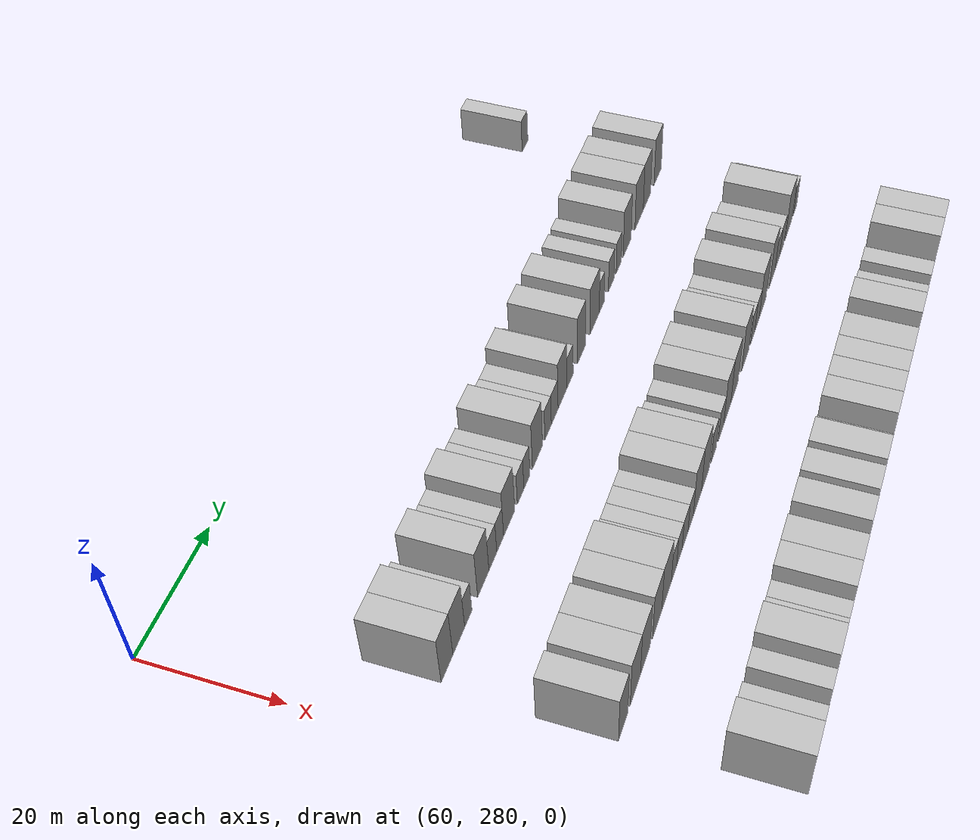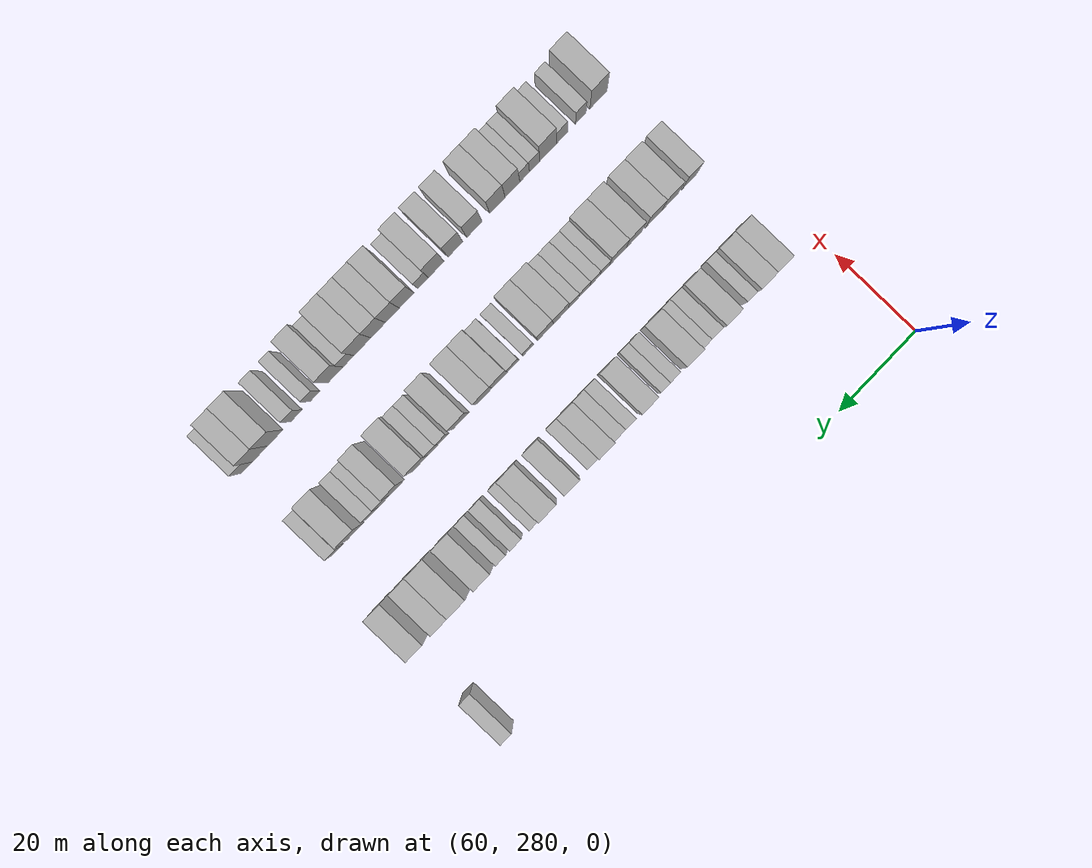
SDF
<sdf version="1.6">
 <world name="default">
  <model name="building_565">
   <static>1</static>
   <pose>69.0000 381.9656 0 0.000000 0.000000 0.000000</pose>
   <link name="link">
    <pose>0 0 3.00 0 0 0</pose>
    <collision name="collision"><geometry><box><size>10.0000 2.7917 6.0000</size></box></geometry></collision>
    <visual name="visual">
     <cast_shadows>0</cast_shadows>
     <geometry><box><size>10.0000 2.7917 6.0000</size></box></geometry>
     <material>
      <script>
       <uri>model://HANNAS_wall/materials/scripts</uri>
       <uri>model://HANNAS_wall/materials/textures</uri>
       <name>vrc/HANNAS_wall</name>
      </script>
     </material>
    </visual>
   </link>
  </model>
  <model name="building_725">
   <static>1</static>
   <pose>91.0000 290.0084 0 0.000000 0.000000 0.000000</pose>
   <link name="link">
    <pose>0 0 4.50 0 0 0</pose>
    <collision name="collision"><geometry><box><size>10.0000 3.8915 9.0000</size></box></geometry></collision>
    <visual name="visual">
     <cast_shadows>0</cast_shadows>
     <geometry><box><size>10.0000 3.8915 9.0000</size></box></geometry>
     <material>
      <script>
       <uri>model://HANNAS_wall/materials/scripts</uri>
       <uri>model://HANNAS_wall/materials/textures</uri>
       <name>vrc/HANNAS_wall</name>
      </script>
     </material>
    </visual>
   </link>
  </model>
  <model name="building_726">
   <static>1</static>
   <pose>91.0000 293.9556 0 0.000000 0.000000 0.000000</pose>
   <link name="link">
    <pose>0 0 4.50 0 0 0</pose>
    <collision name="collision"><geometry><box><size>10.0000 4.0030 9.0000</size></box></geometry></collision>
    <visual name="visual">
     <cast_shadows>0</cast_shadows>
     <geometry><box><size>10.0000 4.0030 9.0000</size></box></geometry>
     <material>
      <script>
       <uri>model://HANNAS_wall/materials/scripts</uri>
       <uri>model://HANNAS_wall/materials/textures</uri>
       <name>vrc/HANNAS_wall</name>
      </script>
     </material>
    </visual>
   </link>
  </model>
  <model name="building_727">
   <static>1</static>
   <pose>91.0000 297.2143 0 0.000000 0.000000 0.000000</pose>
   <link name="link">
    <pose>0 0 3.00 0 0 0</pose>
    <collision name="collision"><geometry><box><size>10.0000 2.5143 6.0000</size></box></geometry></collision>
    <visual name="visual">
     <cast_shadows>0</cast_shadows>
     <geometry><box><size>10.0000 2.5143 6.0000</size></box></geometry>
     <material>
      <script>
       <uri>model://HANNAS_wall/materials/scripts</uri>
       <uri>model://HANNAS_wall/materials/textures</uri>
       <name>vrc/HANNAS_wall</name>
      </script>
     </material>
    </visual>
   </link>
  </model>
  <model name="building_728">
   <static>1</static>
   <pose>91.0000 302.4918 0 0.000000 0.000000 0.000000</pose>
   <link name="link">
    <pose>0 0 4.50 0 0 0</pose>
    <collision name="collision"><geometry><box><size>10.0000 4.0407 9.0000</size></box></geometry></collision>
    <visual name="visual">
     <cast_shadows>0</cast_shadows>
     <geometry><box><size>10.0000 4.0407 9.0000</size></box></geometry>
     <material>
      <script>
       <uri>model://HANNAS_wall/materials/scripts</uri>
       <uri>model://HANNAS_wall/materials/textures</uri>
       <name>vrc/HANNAS_wall</name>
      </script>
     </material>
    </visual>
   </link>
  </model>
  <model name="building_729">
   <static>1</static>
   <pose>91.0000 305.9551 0 0.000000 0.000000 0.000000</pose>
   <link name="link">
    <pose>0 0 3.00 0 0 0</pose>
    <collision name="collision"><geometry><box><size>10.0000 2.8859 6.0000</size></box></geometry></collision>
    <visual name="visual">
     <cast_shadows>0</cast_shadows>
     <geometry><box><size>10.0000 2.8859 6.0000</size></box></geometry>
     <material>
      <script>
       <uri>model://HANNAS_wall/materials/scripts</uri>
       <uri>model://HANNAS_wall/materials/textures</uri>
       <name>vrc/HANNAS_wall</name>
      </script>
     </material>
    </visual>
   </link>
  </model>
  <model name="building_730">
   <static>1</static>
   <pose>91.0000 308.6766 0 0.000000 0.000000 0.000000</pose>
   <link name="link">
    <pose>0 0 3.00 0 0 0</pose>
    <collision name="collision"><geometry><box><size>10.0000 2.5571 6.0000</size></box></geometry></collision>
    <visual name="visual">
     <cast_shadows>0</cast_shadows>
     <geometry><box><size>10.0000 2.5571 6.0000</size></box></geometry>
     <material>
      <script>
       <uri>model://HANNAS_wall/materials/scripts</uri>
       <uri>model://HANNAS_wall/materials/textures</uri>
       <name>vrc/HANNAS_wall</name>
      </script>
     </material>
    </visual>
   </link>
  </model>
  <model name="building_731">
   <static>1</static>
   <pose>91.0000 312.0746 0 0.000000 0.000000 0.000000</pose>
   <link name="link">
    <pose>0 0 4.50 0 0 0</pose>
    <collision name="collision"><geometry><box><size>10.0000 4.2388 9.0000</size></box></geometry></collision>
    <visual name="visual">
     <cast_shadows>0</cast_shadows>
     <geometry><box><size>10.0000 4.2388 9.0000</size></box></geometry>
     <material>
      <script>
       <uri>model://HANNAS_wall/materials/scripts</uri>
       <uri>model://HANNAS_wall/materials/textures</uri>
       <name>vrc/HANNAS_wall</name>
      </script>
     </material>
    </visual>
   </link>
  </model>
  <model name="building_732">
   <static>1</static>
   <pose>91.0000 316.4802 0 0.000000 0.000000 0.000000</pose>
   <link name="link">
    <pose>0 0 3.00 0 0 0</pose>
    <collision name="collision"><geometry><box><size>10.0000 2.5724 6.0000</size></box></geometry></collision>
    <visual name="visual">
     <cast_shadows>0</cast_shadows>
     <geometry><box><size>10.0000 2.5724 6.0000</size></box></geometry>
     <material>
      <script>
       <uri>model://HANNAS_wall/materials/scripts</uri>
       <uri>model://HANNAS_wall/materials/textures</uri>
       <name>vrc/HANNAS_wall</name>
      </script>
     </material>
    </visual>
   </link>
  </model>
  <model name="building_733">
   <static>1</static>
   <pose>91.0000 318.9665 0 0.000000 0.000000 0.000000</pose>
   <link name="link">
    <pose>0 0 3.00 0 0 0</pose>
    <collision name="collision"><geometry><box><size>10.0000 2.4002 6.0000</size></box></geometry></collision>
    <visual name="visual">
     <cast_shadows>0</cast_shadows>
     <geometry><box><size>10.0000 2.4002 6.0000</size></box></geometry>
     <material>
      <script>
       <uri>model://HANNAS_wall/materials/scripts</uri>
       <uri>model://HANNAS_wall/materials/textures</uri>
       <name>vrc/HANNAS_wall</name>
      </script>
     </material>
    </visual>
   </link>
  </model>
  <model name="building_734">
   <static>1</static>
   <pose>91.0000 323.2283 0 0.000000 0.000000 0.000000</pose>
   <link name="link">
    <pose>0 0 4.50 0 0 0</pose>
    <collision name="collision"><geometry><box><size>10.0000 4.1235 9.0000</size></box></geometry></collision>
    <visual name="visual">
     <cast_shadows>0</cast_shadows>
     <geometry><box><size>10.0000 4.1235 9.0000</size></box></geometry>
     <material>
      <script>
       <uri>model://HANNAS_wall/materials/scripts</uri>
       <uri>model://HANNAS_wall/materials/textures</uri>
       <name>vrc/HANNAS_wall</name>
      </script>
     </material>
    </visual>
   </link>
  </model>
  <model name="building_735">
   <static>1</static>
   <pose>91.0000 327.6385 0 0.000000 0.000000 0.000000</pose>
   <link name="link">
    <pose>0 0 3.00 0 0 0</pose>
    <collision name="collision"><geometry><box><size>10.0000 2.6969 6.0000</size></box></geometry></collision>
    <visual name="visual">
     <cast_shadows>0</cast_shadows>
     <geometry><box><size>10.0000 2.6969 6.0000</size></box></geometry>
     <material>
      <script>
       <uri>model://HANNAS_wall/materials/scripts</uri>
       <uri>model://HANNAS_wall/materials/textures</uri>
       <name>vrc/HANNAS_wall</name>
      </script>
     </material>
    </visual>
   </link>
  </model>
  <model name="building_736">
   <static>1</static>
   <pose>91.0000 330.4359 0 0.000000 0.000000 0.000000</pose>
   <link name="link">
    <pose>0 0 3.00 0 0 0</pose>
    <collision name="collision"><geometry><box><size>10.0000 2.8979 6.0000</size></box></geometry></collision>
    <visual name="visual">
     <cast_shadows>0</cast_shadows>
     <geometry><box><size>10.0000 2.8979 6.0000</size></box></geometry>
     <material>
      <script>
       <uri>model://HANNAS_wall/materials/scripts</uri>
       <uri>model://HANNAS_wall/materials/textures</uri>
       <name>vrc/HANNAS_wall</name>
      </script>
     </material>
    </visual>
   </link>
  </model>
  <model name="building_737">
   <static>1</static>
   <pose>91.0000 333.8429 0 0.000000 0.000000 0.000000</pose>
   <link name="link">
    <pose>0 0 4.50 0 0 0</pose>
    <collision name="collision"><geometry><box><size>10.0000 3.9160 9.0000</size></box></geometry></collision>
    <visual name="visual">
     <cast_shadows>0</cast_shadows>
     <geometry><box><size>10.0000 3.9160 9.0000</size></box></geometry>
     <material>
      <script>
       <uri>model://HANNAS_wall/materials/scripts</uri>
       <uri>model://HANNAS_wall/materials/textures</uri>
       <name>vrc/HANNAS_wall</name>
      </script>
     </material>
    </visual>
   </link>
  </model>
  <model name="building_738">
   <static>1</static>
   <pose>91.0000 337.1726 0 0.000000 0.000000 0.000000</pose>
   <link name="link">
    <pose>0 0 3.00 0 0 0</pose>
    <collision name="collision"><geometry><box><size>10.0000 2.7434 6.0000</size></box></geometry></collision>
    <visual name="visual">
     <cast_shadows>0</cast_shadows>
     <geometry><box><size>10.0000 2.7434 6.0000</size></box></geometry>
     <material>
      <script>
       <uri>model://HANNAS_wall/materials/scripts</uri>
       <uri>model://HANNAS_wall/materials/textures</uri>
       <name>vrc/HANNAS_wall</name>
      </script>
     </material>
    </visual>
   </link>
  </model>
  <model name="building_739">
   <static>1</static>
   <pose>91.0000 342.4407 0 0.000000 0.000000 0.000000</pose>
   <link name="link">
    <pose>0 0 4.50 0 0 0</pose>
    <collision name="collision"><geometry><box><size>10.0000 3.7928 9.0000</size></box></geometry></collision>
    <visual name="visual">
     <cast_shadows>0</cast_shadows>
     <geometry><box><size>10.0000 3.7928 9.0000</size></box></geometry>
     <material>
      <script>
       <uri>model://HANNAS_wall/materials/scripts</uri>
       <uri>model://HANNAS_wall/materials/textures</uri>
       <name>vrc/HANNAS_wall</name>
      </script>
     </material>
    </visual>
   </link>
  </model>
  <model name="building_740">
   <static>1</static>
   <pose>91.0000 348.5293 0 0.000000 0.000000 0.000000</pose>
   <link name="link">
    <pose>0 0 4.50 0 0 0</pose>
    <collision name="collision"><geometry><box><size>10.0000 4.3844 9.0000</size></box></geometry></collision>
    <visual name="visual">
     <cast_shadows>0</cast_shadows>
     <geometry><box><size>10.0000 4.3844 9.0000</size></box></geometry>
     <material>
      <script>
       <uri>model://HANNAS_wall/materials/scripts</uri>
       <uri>model://HANNAS_wall/materials/textures</uri>
       <name>vrc/HANNAS_wall</name>
      </script>
     </material>
    </visual>
   </link>
  </model>
  <model name="building_741">
   <static>1</static>
   <pose>91.0000 351.9346 0 0.000000 0.000000 0.000000</pose>
   <link name="link">
    <pose>0 0 3.00 0 0 0</pose>
    <collision name="collision"><geometry><box><size>10.0000 2.4262 6.0000</size></box></geometry></collision>
    <visual name="visual">
     <cast_shadows>0</cast_shadows>
     <geometry><box><size>10.0000 2.4262 6.0000</size></box></geometry>
     <material>
      <script>
       <uri>model://HANNAS_wall/materials/scripts</uri>
       <uri>model://HANNAS_wall/materials/textures</uri>
       <name>vrc/HANNAS_wall</name>
      </script>
     </material>
    </visual>
   </link>
  </model>
  <model name="building_742">
   <static>1</static>
   <pose>91.0000 356.5745 0 0.000000 0.000000 0.000000</pose>
   <link name="link">
    <pose>0 0 3.00 0 0 0</pose>
    <collision name="collision"><geometry><box><size>10.0000 2.8535 6.0000</size></box></geometry></collision>
    <visual name="visual">
     <cast_shadows>0</cast_shadows>
     <geometry><box><size>10.0000 2.8535 6.0000</size></box></geometry>
     <material>
      <script>
       <uri>model://HANNAS_wall/materials/scripts</uri>
       <uri>model://HANNAS_wall/materials/textures</uri>
       <name>vrc/HANNAS_wall</name>
      </script>
     </material>
    </visual>
   </link>
  </model>
  <model name="building_743">
   <static>1</static>
   <pose>91.0000 360.3081 0 0.000000 0.000000 0.000000</pose>
   <link name="link">
    <pose>0 0 3.00 0 0 0</pose>
    <collision name="collision"><geometry><box><size>10.0000 2.6138 6.0000</size></box></geometry></collision>
    <visual name="visual">
     <cast_shadows>0</cast_shadows>
     <geometry><box><size>10.0000 2.6138 6.0000</size></box></geometry>
     <material>
      <script>
       <uri>model://HANNAS_wall/materials/scripts</uri>
       <uri>model://HANNAS_wall/materials/textures</uri>
       <name>vrc/HANNAS_wall</name>
      </script>
     </material>
    </visual>
   </link>
  </model>
  <model name="building_744">
   <static>1</static>
   <pose>91.0000 364.6768 0 0.000000 0.000000 0.000000</pose>
   <link name="link">
    <pose>0 0 4.50 0 0 0</pose>
    <collision name="collision"><geometry><box><size>10.0000 4.1237 9.0000</size></box></geometry></collision>
    <visual name="visual">
     <cast_shadows>0</cast_shadows>
     <geometry><box><size>10.0000 4.1237 9.0000</size></box></geometry>
     <material>
      <script>
       <uri>model://HANNAS_wall/materials/scripts</uri>
       <uri>model://HANNAS_wall/materials/textures</uri>
       <name>vrc/HANNAS_wall</name>
      </script>
     </material>
    </visual>
   </link>
  </model>
  <model name="building_745">
   <static>1</static>
   <pose>91.0000 370.9857 0 0.000000 0.000000 0.000000</pose>
   <link name="link">
    <pose>0 0 4.50 0 0 0</pose>
    <collision name="collision"><geometry><box><size>10.0000 4.4940 9.0000</size></box></geometry></collision>
    <visual name="visual">
     <cast_shadows>0</cast_shadows>
     <geometry><box><size>10.0000 4.4940 9.0000</size></box></geometry>
     <material>
      <script>
       <uri>model://HANNAS_wall/materials/scripts</uri>
       <uri>model://HANNAS_wall/materials/textures</uri>
       <name>vrc/HANNAS_wall</name>
      </script>
     </material>
    </visual>
   </link>
  </model>
  <model name="building_746">
   <static>1</static>
   <pose>91.0000 375.2207 0 0.000000 0.000000 0.000000</pose>
   <link name="link">
    <pose>0 0 4.50 0 0 0</pose>
    <collision name="collision"><geometry><box><size>10.0000 3.9759 9.0000</size></box></geometry></collision>
    <visual name="visual">
     <cast_shadows>0</cast_shadows>
     <geometry><box><size>10.0000 3.9759 9.0000</size></box></geometry>
     <material>
      <script>
       <uri>model://HANNAS_wall/materials/scripts</uri>
       <uri>model://HANNAS_wall/materials/textures</uri>
       <name>vrc/HANNAS_wall</name>
      </script>
     </material>
    </visual>
   </link>
  </model>
  <model name="building_747">
   <static>1</static>
   <pose>91.0000 381.2548 0 0.000000 0.000000 0.000000</pose>
   <link name="link">
    <pose>0 0 4.50 0 0 0</pose>
    <collision name="collision"><geometry><box><size>10.0000 4.0922 9.0000</size></box></geometry></collision>
    <visual name="visual">
     <cast_shadows>0</cast_shadows>
     <geometry><box><size>10.0000 4.0922 9.0000</size></box></geometry>
     <material>
      <script>
       <uri>model://HANNAS_wall/materials/scripts</uri>
       <uri>model://HANNAS_wall/materials/textures</uri>
       <name>vrc/HANNAS_wall</name>
      </script>
     </material>
    </visual>
   </link>
  </model>
  <model name="building_920">
   <static>1</static>
   <pose>113.0000 288.9469 0 0.000000 0.000000 0.000000</pose>
   <link name="link">
    <pose>0 0 4.50 0 0 0</pose>
    <collision name="collision"><geometry><box><size>10.0000 3.6995 9.0000</size></box></geometry></collision>
    <visual name="visual">
     <cast_shadows>0</cast_shadows>
     <geometry><box><size>10.0000 3.6995 9.0000</size></box></geometry>
     <material>
      <script>
       <uri>model://HANNAS_wall/materials/scripts</uri>
       <uri>model://HANNAS_wall/materials/textures</uri>
       <name>vrc/HANNAS_wall</name>
      </script>
     </material>
    </visual>
   </link>
  </model>
  <model name="building_921">
   <static>1</static>
   <pose>113.0000 293.9309 0 0.000000 0.000000 0.000000</pose>
   <link name="link">
    <pose>0 0 4.50 0 0 0</pose>
    <collision name="collision"><geometry><box><size>10.0000 4.2686 9.0000</size></box></geometry></collision>
    <visual name="visual">
     <cast_shadows>0</cast_shadows>
     <geometry><box><size>10.0000 4.2686 9.0000</size></box></geometry>
     <material>
      <script>
       <uri>model://HANNAS_wall/materials/scripts</uri>
       <uri>model://HANNAS_wall/materials/textures</uri>
       <name>vrc/HANNAS_wall</name>
      </script>
     </material>
    </visual>
   </link>
  </model>
  <model name="building_922">
   <static>1</static>
   <pose>113.0000 298.1415 0 0.000000 0.000000 0.000000</pose>
   <link name="link">
    <pose>0 0 4.50 0 0 0</pose>
    <collision name="collision"><geometry><box><size>10.0000 4.1526 9.0000</size></box></geometry></collision>
    <visual name="visual">
     <cast_shadows>0</cast_shadows>
     <geometry><box><size>10.0000 4.1526 9.0000</size></box></geometry>
     <material>
      <script>
       <uri>model://HANNAS_wall/materials/scripts</uri>
       <uri>model://HANNAS_wall/materials/textures</uri>
       <name>vrc/HANNAS_wall</name>
      </script>
     </material>
    </visual>
   </link>
  </model>
  <model name="building_923">
   <static>1</static>
   <pose>113.0000 303.2553 0 0.000000 0.000000 0.000000</pose>
   <link name="link">
    <pose>0 0 4.50 0 0 0</pose>
    <collision name="collision"><geometry><box><size>10.0000 4.0749 9.0000</size></box></geometry></collision>
    <visual name="visual">
     <cast_shadows>0</cast_shadows>
     <geometry><box><size>10.0000 4.0749 9.0000</size></box></geometry>
     <material>
      <script>
       <uri>model://HANNAS_wall/materials/scripts</uri>
       <uri>model://HANNAS_wall/materials/textures</uri>
       <name>vrc/HANNAS_wall</name>
      </script>
     </material>
    </visual>
   </link>
  </model>
  <model name="building_924">
   <static>1</static>
   <pose>113.0000 307.4810 0 0.000000 0.000000 0.000000</pose>
   <link name="link">
    <pose>0 0 4.50 0 0 0</pose>
    <collision name="collision"><geometry><box><size>10.0000 4.3766 9.0000</size></box></geometry></collision>
    <visual name="visual">
     <cast_shadows>0</cast_shadows>
     <geometry><box><size>10.0000 4.3766 9.0000</size></box></geometry>
     <material>
      <script>
       <uri>model://HANNAS_wall/materials/scripts</uri>
       <uri>model://HANNAS_wall/materials/textures</uri>
       <name>vrc/HANNAS_wall</name>
      </script>
     </material>
    </visual>
   </link>
  </model>
  <model name="building_925">
   <static>1</static>
   <pose>113.0000 310.9009 0 0.000000 0.000000 0.000000</pose>
   <link name="link">
    <pose>0 0 3.00 0 0 0</pose>
    <collision name="collision"><geometry><box><size>10.0000 2.4632 6.0000</size></box></geometry></collision>
    <visual name="visual">
     <cast_shadows>0</cast_shadows>
     <geometry><box><size>10.0000 2.4632 6.0000</size></box></geometry>
     <material>
      <script>
       <uri>model://HANNAS_wall/materials/scripts</uri>
       <uri>model://HANNAS_wall/materials/textures</uri>
       <name>vrc/HANNAS_wall</name>
      </script>
     </material>
    </visual>
   </link>
  </model>
  <model name="building_926">
   <static>1</static>
   <pose>113.0000 313.3874 0 0.000000 0.000000 0.000000</pose>
   <link name="link">
    <pose>0 0 3.00 0 0 0</pose>
    <collision name="collision"><geometry><box><size>10.0000 2.5098 6.0000</size></box></geometry></collision>
    <visual name="visual">
     <cast_shadows>0</cast_shadows>
     <geometry><box><size>10.0000 2.5098 6.0000</size></box></geometry>
     <material>
      <script>
       <uri>model://HANNAS_wall/materials/scripts</uri>
       <uri>model://HANNAS_wall/materials/textures</uri>
       <name>vrc/HANNAS_wall</name>
      </script>
     </material>
    </visual>
   </link>
  </model>
  <model name="building_927">
   <static>1</static>
   <pose>113.0000 316.0762 0 0.000000 0.000000 0.000000</pose>
   <link name="link">
    <pose>0 0 3.00 0 0 0</pose>
    <collision name="collision"><geometry><box><size>10.0000 2.8680 6.0000</size></box></geometry></collision>
    <visual name="visual">
     <cast_shadows>0</cast_shadows>
     <geometry><box><size>10.0000 2.8680 6.0000</size></box></geometry>
     <material>
      <script>
       <uri>model://HANNAS_wall/materials/scripts</uri>
       <uri>model://HANNAS_wall/materials/textures</uri>
       <name>vrc/HANNAS_wall</name>
      </script>
     </material>
    </visual>
   </link>
  </model>
  <model name="building_928">
   <static>1</static>
   <pose>113.0000 318.8377 0 0.000000 0.000000 0.000000</pose>
   <link name="link">
    <pose>0 0 3.00 0 0 0</pose>
    <collision name="collision"><geometry><box><size>10.0000 2.6549 6.0000</size></box></geometry></collision>
    <visual name="visual">
     <cast_shadows>0</cast_shadows>
     <geometry><box><size>10.0000 2.6549 6.0000</size></box></geometry>
     <material>
      <script>
       <uri>model://HANNAS_wall/materials/scripts</uri>
       <uri>model://HANNAS_wall/materials/textures</uri>
       <name>vrc/HANNAS_wall</name>
      </script>
     </material>
    </visual>
   </link>
  </model>
  <model name="building_929">
   <static>1</static>
   <pose>113.0000 322.2018 0 0.000000 0.000000 0.000000</pose>
   <link name="link">
    <pose>0 0 4.50 0 0 0</pose>
    <collision name="collision"><geometry><box><size>10.0000 4.0734 9.0000</size></box></geometry></collision>
    <visual name="visual">
     <cast_shadows>0</cast_shadows>
     <geometry><box><size>10.0000 4.0734 9.0000</size></box></geometry>
     <material>
      <script>
       <uri>model://HANNAS_wall/materials/scripts</uri>
       <uri>model://HANNAS_wall/materials/textures</uri>
       <name>vrc/HANNAS_wall</name>
      </script>
     </material>
    </visual>
   </link>
  </model>
  <model name="building_930">
   <static>1</static>
   <pose>113.0000 326.2421 0 0.000000 0.000000 0.000000</pose>
   <link name="link">
    <pose>0 0 4.50 0 0 0</pose>
    <collision name="collision"><geometry><box><size>10.0000 4.0072 9.0000</size></box></geometry></collision>
    <visual name="visual">
     <cast_shadows>0</cast_shadows>
     <geometry><box><size>10.0000 4.0072 9.0000</size></box></geometry>
     <material>
      <script>
       <uri>model://HANNAS_wall/materials/scripts</uri>
       <uri>model://HANNAS_wall/materials/textures</uri>
       <name>vrc/HANNAS_wall</name>
      </script>
     </material>
    </visual>
   </link>
  </model>
  <model name="building_931">
   <static>1</static>
   <pose>113.0000 330.6208 0 0.000000 0.000000 0.000000</pose>
   <link name="link">
    <pose>0 0 3.00 0 0 0</pose>
    <collision name="collision"><geometry><box><size>10.0000 2.7502 6.0000</size></box></geometry></collision>
    <visual name="visual">
     <cast_shadows>0</cast_shadows>
     <geometry><box><size>10.0000 2.7502 6.0000</size></box></geometry>
     <material>
      <script>
       <uri>model://HANNAS_wall/materials/scripts</uri>
       <uri>model://HANNAS_wall/materials/textures</uri>
       <name>vrc/HANNAS_wall</name>
      </script>
     </material>
    </visual>
   </link>
  </model>
  <model name="building_932">
   <static>1</static>
   <pose>113.0000 334.4828 0 0.000000 0.000000 0.000000</pose>
   <link name="link">
    <pose>0 0 3.00 0 0 0</pose>
    <collision name="collision"><geometry><box><size>10.0000 2.9738 6.0000</size></box></geometry></collision>
    <visual name="visual">
     <cast_shadows>0</cast_shadows>
     <geometry><box><size>10.0000 2.9738 6.0000</size></box></geometry>
     <material>
      <script>
       <uri>model://HANNAS_wall/materials/scripts</uri>
       <uri>model://HANNAS_wall/materials/textures</uri>
       <name>vrc/HANNAS_wall</name>
      </script>
     </material>
    </visual>
   </link>
  </model>
  <model name="building_933">
   <static>1</static>
   <pose>113.0000 337.8903 0 0.000000 0.000000 0.000000</pose>
   <link name="link">
    <pose>0 0 4.50 0 0 0</pose>
    <collision name="collision"><geometry><box><size>10.0000 3.8413 9.0000</size></box></geometry></collision>
    <visual name="visual">
     <cast_shadows>0</cast_shadows>
     <geometry><box><size>10.0000 3.8413 9.0000</size></box></geometry>
     <material>
      <script>
       <uri>model://HANNAS_wall/materials/scripts</uri>
       <uri>model://HANNAS_wall/materials/textures</uri>
       <name>vrc/HANNAS_wall</name>
      </script>
     </material>
    </visual>
   </link>
  </model>
  <model name="building_934">
   <static>1</static>
   <pose>113.0000 341.8896 0 0.000000 0.000000 0.000000</pose>
   <link name="link">
    <pose>0 0 4.50 0 0 0</pose>
    <collision name="collision"><geometry><box><size>10.0000 4.1573 9.0000</size></box></geometry></collision>
    <visual name="visual">
     <cast_shadows>0</cast_shadows>
     <geometry><box><size>10.0000 4.1573 9.0000</size></box></geometry>
     <material>
      <script>
       <uri>model://HANNAS_wall/materials/scripts</uri>
       <uri>model://HANNAS_wall/materials/textures</uri>
       <name>vrc/HANNAS_wall</name>
      </script>
     </material>
    </visual>
   </link>
  </model>
  <model name="building_935">
   <static>1</static>
   <pose>113.0000 348.0848 0 0.000000 0.000000 0.000000</pose>
   <link name="link">
    <pose>0 0 4.50 0 0 0</pose>
    <collision name="collision"><geometry><box><size>10.0000 4.2332 9.0000</size></box></geometry></collision>
    <visual name="visual">
     <cast_shadows>0</cast_shadows>
     <geometry><box><size>10.0000 4.2332 9.0000</size></box></geometry>
     <material>
      <script>
       <uri>model://HANNAS_wall/materials/scripts</uri>
       <uri>model://HANNAS_wall/materials/textures</uri>
       <name>vrc/HANNAS_wall</name>
      </script>
     </material>
    </visual>
   </link>
  </model>
  <model name="building_936">
   <static>1</static>
   <pose>113.0000 352.4973 0 0.000000 0.000000 0.000000</pose>
   <link name="link">
    <pose>0 0 3.00 0 0 0</pose>
    <collision name="collision"><geometry><box><size>10.0000 2.5918 6.0000</size></box></geometry></collision>
    <visual name="visual">
     <cast_shadows>0</cast_shadows>
     <geometry><box><size>10.0000 2.5918 6.0000</size></box></geometry>
     <material>
      <script>
       <uri>model://HANNAS_wall/materials/scripts</uri>
       <uri>model://HANNAS_wall/materials/textures</uri>
       <name>vrc/HANNAS_wall</name>
      </script>
     </material>
    </visual>
   </link>
  </model>
  <model name="building_937">
   <static>1</static>
   <pose>113.0000 355.1414 0 0.000000 0.000000 0.000000</pose>
   <link name="link">
    <pose>0 0 3.00 0 0 0</pose>
    <collision name="collision"><geometry><box><size>10.0000 2.6963 6.0000</size></box></geometry></collision>
    <visual name="visual">
     <cast_shadows>0</cast_shadows>
     <geometry><box><size>10.0000 2.6963 6.0000</size></box></geometry>
     <material>
      <script>
       <uri>model://HANNAS_wall/materials/scripts</uri>
       <uri>model://HANNAS_wall/materials/textures</uri>
       <name>vrc/HANNAS_wall</name>
      </script>
     </material>
    </visual>
   </link>
  </model>
  <model name="building_938">
   <static>1</static>
   <pose>113.0000 358.6299 0 0.000000 0.000000 0.000000</pose>
   <link name="link">
    <pose>0 0 4.50 0 0 0</pose>
    <collision name="collision"><geometry><box><size>10.0000 4.2808 9.0000</size></box></geometry></collision>
    <visual name="visual">
     <cast_shadows>0</cast_shadows>
     <geometry><box><size>10.0000 4.2808 9.0000</size></box></geometry>
     <material>
      <script>
       <uri>model://HANNAS_wall/materials/scripts</uri>
       <uri>model://HANNAS_wall/materials/textures</uri>
       <name>vrc/HANNAS_wall</name>
      </script>
     </material>
    </visual>
   </link>
  </model>
  <model name="building_939">
   <static>1</static>
   <pose>113.0000 364.6229 0 0.000000 0.000000 0.000000</pose>
   <link name="link">
    <pose>0 0 4.50 0 0 0</pose>
    <collision name="collision"><geometry><box><size>10.0000 3.7051 9.0000</size></box></geometry></collision>
    <visual name="visual">
     <cast_shadows>0</cast_shadows>
     <geometry><box><size>10.0000 3.7051 9.0000</size></box></geometry>
     <material>
      <script>
       <uri>model://HANNAS_wall/materials/scripts</uri>
       <uri>model://HANNAS_wall/materials/textures</uri>
       <name>vrc/HANNAS_wall</name>
      </script>
     </material>
    </visual>
   </link>
  </model>
  <model name="building_940">
   <static>1</static>
   <pose>113.0000 367.9745 0 0.000000 0.000000 0.000000</pose>
   <link name="link">
    <pose>0 0 3.00 0 0 0</pose>
    <collision name="collision"><geometry><box><size>10.0000 2.9982 6.0000</size></box></geometry></collision>
    <visual name="visual">
     <cast_shadows>0</cast_shadows>
     <geometry><box><size>10.0000 2.9982 6.0000</size></box></geometry>
     <material>
      <script>
       <uri>model://HANNAS_wall/materials/scripts</uri>
       <uri>model://HANNAS_wall/materials/textures</uri>
       <name>vrc/HANNAS_wall</name>
      </script>
     </material>
    </visual>
   </link>
  </model>
  <model name="building_941">
   <static>1</static>
   <pose>113.0000 370.8877 0 0.000000 0.000000 0.000000</pose>
   <link name="link">
    <pose>0 0 3.00 0 0 0</pose>
    <collision name="collision"><geometry><box><size>10.0000 2.8282 6.0000</size></box></geometry></collision>
    <visual name="visual">
     <cast_shadows>0</cast_shadows>
     <geometry><box><size>10.0000 2.8282 6.0000</size></box></geometry>
     <material>
      <script>
       <uri>model://HANNAS_wall/materials/scripts</uri>
       <uri>model://HANNAS_wall/materials/textures</uri>
       <name>vrc/HANNAS_wall</name>
      </script>
     </material>
    </visual>
   </link>
  </model>
  <model name="building_942">
   <static>1</static>
   <pose>113.0000 375.5230 0 0.000000 0.000000 0.000000</pose>
   <link name="link">
    <pose>0 0 4.50 0 0 0</pose>
    <collision name="collision"><geometry><box><size>10.0000 4.4424 9.0000</size></box></geometry></collision>
    <visual name="visual">
     <cast_shadows>0</cast_shadows>
     <geometry><box><size>10.0000 4.4424 9.0000</size></box></geometry>
     <material>
      <script>
       <uri>model://HANNAS_wall/materials/scripts</uri>
       <uri>model://HANNAS_wall/materials/textures</uri>
       <name>vrc/HANNAS_wall</name>
      </script>
     </material>
    </visual>
   </link>
  </model>
  <model name="building_943">
   <static>1</static>
   <pose>113.0000 380.0376 0 0.000000 0.000000 0.000000</pose>
   <link name="link">
    <pose>0 0 3.00 0 0 0</pose>
    <collision name="collision"><geometry><box><size>10.0000 2.5867 6.0000</size></box></geometry></collision>
    <visual name="visual">
     <cast_shadows>0</cast_shadows>
     <geometry><box><size>10.0000 2.5867 6.0000</size></box></geometry>
     <material>
      <script>
       <uri>model://HANNAS_wall/materials/scripts</uri>
       <uri>model://HANNAS_wall/materials/textures</uri>
       <name>vrc/HANNAS_wall</name>
      </script>
     </material>
    </visual>
   </link>
  </model>
  <model name="building_1112">
   <static>1</static>
   <pose>135.0000 289.4489 0 0.000000 0.000000 0.000000</pose>
   <link name="link">
    <pose>0 0 4.50 0 0 0</pose>
    <collision name="collision"><geometry><box><size>10.0000 4.4092 9.0000</size></box></geometry></collision>
    <visual name="visual">
     <cast_shadows>0</cast_shadows>
     <geometry><box><size>10.0000 4.4092 9.0000</size></box></geometry>
     <material>
      <script>
       <uri>model://HANNAS_wall/materials/scripts</uri>
       <uri>model://HANNAS_wall/materials/textures</uri>
       <name>vrc/HANNAS_wall</name>
      </script>
     </material>
    </visual>
   </link>
  </model>
  <model name="building_1113">
   <static>1</static>
   <pose>135.0000 294.0334 0 0.000000 0.000000 0.000000</pose>
   <link name="link">
    <pose>0 0 3.00 0 0 0</pose>
    <collision name="collision"><geometry><box><size>10.0000 2.7597 6.0000</size></box></geometry></collision>
    <visual name="visual">
     <cast_shadows>0</cast_shadows>
     <geometry><box><size>10.0000 2.7597 6.0000</size></box></geometry>
     <material>
      <script>
       <uri>model://HANNAS_wall/materials/scripts</uri>
       <uri>model://HANNAS_wall/materials/textures</uri>
       <name>vrc/HANNAS_wall</name>
      </script>
     </material>
    </visual>
   </link>
  </model>
  <model name="building_1114">
   <static>1</static>
   <pose>135.0000 298.8424 0 0.000000 0.000000 0.000000</pose>
   <link name="link">
    <pose>0 0 3.00 0 0 0</pose>
    <collision name="collision"><geometry><box><size>10.0000 2.8584 6.0000</size></box></geometry></collision>
    <visual name="visual">
     <cast_shadows>0</cast_shadows>
     <geometry><box><size>10.0000 2.8584 6.0000</size></box></geometry>
     <material>
      <script>
       <uri>model://HANNAS_wall/materials/scripts</uri>
       <uri>model://HANNAS_wall/materials/textures</uri>
       <name>vrc/HANNAS_wall</name>
      </script>
     </material>
    </visual>
   </link>
  </model>
  <model name="building_1115">
   <static>1</static>
   <pose>135.0000 302.4598 0 0.000000 0.000000 0.000000</pose>
   <link name="link">
    <pose>0 0 4.50 0 0 0</pose>
    <collision name="collision"><geometry><box><size>10.0000 4.3763 9.0000</size></box></geometry></collision>
    <visual name="visual">
     <cast_shadows>0</cast_shadows>
     <geometry><box><size>10.0000 4.3763 9.0000</size></box></geometry>
     <material>
      <script>
       <uri>model://HANNAS_wall/materials/scripts</uri>
       <uri>model://HANNAS_wall/materials/textures</uri>
       <name>vrc/HANNAS_wall</name>
      </script>
     </material>
    </visual>
   </link>
  </model>
  <model name="building_1116">
   <static>1</static>
   <pose>135.0000 305.9838 0 0.000000 0.000000 0.000000</pose>
   <link name="link">
    <pose>0 0 3.00 0 0 0</pose>
    <collision name="collision"><geometry><box><size>10.0000 2.6718 6.0000</size></box></geometry></collision>
    <visual name="visual">
     <cast_shadows>0</cast_shadows>
     <geometry><box><size>10.0000 2.6718 6.0000</size></box></geometry>
     <material>
      <script>
       <uri>model://HANNAS_wall/materials/scripts</uri>
       <uri>model://HANNAS_wall/materials/textures</uri>
       <name>vrc/HANNAS_wall</name>
      </script>
     </material>
    </visual>
   </link>
  </model>
  <model name="building_1117">
   <static>1</static>
   <pose>135.0000 308.5745 0 0.000000 0.000000 0.000000</pose>
   <link name="link">
    <pose>0 0 3.00 0 0 0</pose>
    <collision name="collision"><geometry><box><size>10.0000 2.5095 6.0000</size></box></geometry></collision>
    <visual name="visual">
     <cast_shadows>0</cast_shadows>
     <geometry><box><size>10.0000 2.5095 6.0000</size></box></geometry>
     <material>
      <script>
       <uri>model://HANNAS_wall/materials/scripts</uri>
       <uri>model://HANNAS_wall/materials/textures</uri>
       <name>vrc/HANNAS_wall</name>
      </script>
     </material>
    </visual>
   </link>
  </model>
  <model name="building_1118">
   <static>1</static>
   <pose>135.0000 311.7422 0 0.000000 0.000000 0.000000</pose>
   <link name="link">
    <pose>0 0 4.50 0 0 0</pose>
    <collision name="collision"><geometry><box><size>10.0000 3.8261 9.0000</size></box></geometry></collision>
    <visual name="visual">
     <cast_shadows>0</cast_shadows>
     <geometry><box><size>10.0000 3.8261 9.0000</size></box></geometry>
     <material>
      <script>
       <uri>model://HANNAS_wall/materials/scripts</uri>
       <uri>model://HANNAS_wall/materials/textures</uri>
       <name>vrc/HANNAS_wall</name>
      </script>
     </material>
    </visual>
   </link>
  </model>
  <model name="building_1119">
   <static>1</static>
   <pose>135.0000 315.6512 0 0.000000 0.000000 0.000000</pose>
   <link name="link">
    <pose>0 0 4.50 0 0 0</pose>
    <collision name="collision"><geometry><box><size>10.0000 3.9918 9.0000</size></box></geometry></collision>
    <visual name="visual">
     <cast_shadows>0</cast_shadows>
     <geometry><box><size>10.0000 3.9918 9.0000</size></box></geometry>
     <material>
      <script>
       <uri>model://HANNAS_wall/materials/scripts</uri>
       <uri>model://HANNAS_wall/materials/textures</uri>
       <name>vrc/HANNAS_wall</name>
      </script>
     </material>
    </visual>
   </link>
  </model>
  <model name="building_1120">
   <static>1</static>
   <pose>135.0000 321.6376 0 0.000000 0.000000 0.000000</pose>
   <link name="link">
    <pose>0 0 4.50 0 0 0</pose>
    <collision name="collision"><geometry><box><size>10.0000 3.9810 9.0000</size></box></geometry></collision>
    <visual name="visual">
     <cast_shadows>0</cast_shadows>
     <geometry><box><size>10.0000 3.9810 9.0000</size></box></geometry>
     <material>
      <script>
       <uri>model://HANNAS_wall/materials/scripts</uri>
       <uri>model://HANNAS_wall/materials/textures</uri>
       <name>vrc/HANNAS_wall</name>
      </script>
     </material>
    </visual>
   </link>
  </model>
  <model name="building_1121">
   <static>1</static>
   <pose>135.0000 326.5588 0 0.000000 0.000000 0.000000</pose>
   <link name="link">
    <pose>0 0 4.50 0 0 0</pose>
    <collision name="collision"><geometry><box><size>10.0000 3.8613 9.0000</size></box></geometry></collision>
    <visual name="visual">
     <cast_shadows>0</cast_shadows>
     <geometry><box><size>10.0000 3.8613 9.0000</size></box></geometry>
     <material>
      <script>
       <uri>model://HANNAS_wall/materials/scripts</uri>
       <uri>model://HANNAS_wall/materials/textures</uri>
       <name>vrc/HANNAS_wall</name>
      </script>
     </material>
    </visual>
   </link>
  </model>
  <model name="building_1122">
   <static>1</static>
   <pose>135.0000 331.5316 0 0.000000 0.000000 0.000000</pose>
   <link name="link">
    <pose>0 0 4.50 0 0 0</pose>
    <collision name="collision"><geometry><box><size>10.0000 4.0841 9.0000</size></box></geometry></collision>
    <visual name="visual">
     <cast_shadows>0</cast_shadows>
     <geometry><box><size>10.0000 4.0841 9.0000</size></box></geometry>
     <material>
      <script>
       <uri>model://HANNAS_wall/materials/scripts</uri>
       <uri>model://HANNAS_wall/materials/textures</uri>
       <name>vrc/HANNAS_wall</name>
      </script>
     </material>
    </visual>
   </link>
  </model>
  <model name="building_1123">
   <static>1</static>
   <pose>135.0000 334.9356 0 0.000000 0.000000 0.000000</pose>
   <link name="link">
    <pose>0 0 3.00 0 0 0</pose>
    <collision name="collision"><geometry><box><size>10.0000 2.7239 6.0000</size></box></geometry></collision>
    <visual name="visual">
     <cast_shadows>0</cast_shadows>
     <geometry><box><size>10.0000 2.7239 6.0000</size></box></geometry>
     <material>
      <script>
       <uri>model://HANNAS_wall/materials/scripts</uri>
       <uri>model://HANNAS_wall/materials/textures</uri>
       <name>vrc/HANNAS_wall</name>
      </script>
     </material>
    </visual>
   </link>
  </model>
  <model name="building_1124">
   <static>1</static>
   <pose>135.0000 339.1961 0 0.000000 0.000000 0.000000</pose>
   <link name="link">
    <pose>0 0 4.50 0 0 0</pose>
    <collision name="collision"><geometry><box><size>10.0000 3.7970 9.0000</size></box></geometry></collision>
    <visual name="visual">
     <cast_shadows>0</cast_shadows>
     <geometry><box><size>10.0000 3.7970 9.0000</size></box></geometry>
     <material>
      <script>
       <uri>model://HANNAS_wall/materials/scripts</uri>
       <uri>model://HANNAS_wall/materials/textures</uri>
       <name>vrc/HANNAS_wall</name>
      </script>
     </material>
    </visual>
   </link>
  </model>
  <model name="building_1125">
   <static>1</static>
   <pose>135.0000 342.9103 0 0.000000 0.000000 0.000000</pose>
   <link name="link">
    <pose>0 0 4.50 0 0 0</pose>
    <collision name="collision"><geometry><box><size>10.0000 3.6314 9.0000</size></box></geometry></collision>
    <visual name="visual">
     <cast_shadows>0</cast_shadows>
     <geometry><box><size>10.0000 3.6314 9.0000</size></box></geometry>
     <material>
      <script>
       <uri>model://HANNAS_wall/materials/scripts</uri>
       <uri>model://HANNAS_wall/materials/textures</uri>
       <name>vrc/HANNAS_wall</name>
      </script>
     </material>
    </visual>
   </link>
  </model>
  <model name="building_1126">
   <static>1</static>
   <pose>135.0000 346.6017 0 0.000000 0.000000 0.000000</pose>
   <link name="link">
    <pose>0 0 4.50 0 0 0</pose>
    <collision name="collision"><geometry><box><size>10.0000 3.7514 9.0000</size></box></geometry></collision>
    <visual name="visual">
     <cast_shadows>0</cast_shadows>
     <geometry><box><size>10.0000 3.7514 9.0000</size></box></geometry>
     <material>
      <script>
       <uri>model://HANNAS_wall/materials/scripts</uri>
       <uri>model://HANNAS_wall/materials/textures</uri>
       <name>vrc/HANNAS_wall</name>
      </script>
     </material>
    </visual>
   </link>
  </model>
  <model name="building_1127">
   <static>1</static>
   <pose>135.0000 350.6897 0 0.000000 0.000000 0.000000</pose>
   <link name="link">
    <pose>0 0 4.50 0 0 0</pose>
    <collision name="collision"><geometry><box><size>10.0000 4.4245 9.0000</size></box></geometry></collision>
    <visual name="visual">
     <cast_shadows>0</cast_shadows>
     <geometry><box><size>10.0000 4.4245 9.0000</size></box></geometry>
     <material>
      <script>
       <uri>model://HANNAS_wall/materials/scripts</uri>
       <uri>model://HANNAS_wall/materials/textures</uri>
       <name>vrc/HANNAS_wall</name>
      </script>
     </material>
    </visual>
   </link>
  </model>
  <model name="building_1128">
   <static>1</static>
   <pose>135.0000 354.3382 0 0.000000 0.000000 0.000000</pose>
   <link name="link">
    <pose>0 0 3.00 0 0 0</pose>
    <collision name="collision"><geometry><box><size>10.0000 2.8724 6.0000</size></box></geometry></collision>
    <visual name="visual">
     <cast_shadows>0</cast_shadows>
     <geometry><box><size>10.0000 2.8724 6.0000</size></box></geometry>
     <material>
      <script>
       <uri>model://HANNAS_wall/materials/scripts</uri>
       <uri>model://HANNAS_wall/materials/textures</uri>
       <name>vrc/HANNAS_wall</name>
      </script>
     </material>
    </visual>
   </link>
  </model>
  <model name="building_1129">
   <static>1</static>
   <pose>135.0000 357.7739 0 0.000000 0.000000 0.000000</pose>
   <link name="link">
    <pose>0 0 4.50 0 0 0</pose>
    <collision name="collision"><geometry><box><size>10.0000 3.9992 9.0000</size></box></geometry></collision>
    <visual name="visual">
     <cast_shadows>0</cast_shadows>
     <geometry><box><size>10.0000 3.9992 9.0000</size></box></geometry>
     <material>
      <script>
       <uri>model://HANNAS_wall/materials/scripts</uri>
       <uri>model://HANNAS_wall/materials/textures</uri>
       <name>vrc/HANNAS_wall</name>
      </script>
     </material>
    </visual>
   </link>
  </model>
  <model name="building_1130">
   <static>1</static>
   <pose>135.0000 363.0764 0 0.000000 0.000000 0.000000</pose>
   <link name="link">
    <pose>0 0 3.00 0 0 0</pose>
    <collision name="collision"><geometry><box><size>10.0000 2.6057 6.0000</size></box></geometry></collision>
    <visual name="visual">
     <cast_shadows>0</cast_shadows>
     <geometry><box><size>10.0000 2.6057 6.0000</size></box></geometry>
     <material>
      <script>
       <uri>model://HANNAS_wall/materials/scripts</uri>
       <uri>model://HANNAS_wall/materials/textures</uri>
       <name>vrc/HANNAS_wall</name>
      </script>
     </material>
    </visual>
   </link>
  </model>
  <model name="building_1131">
   <static>1</static>
   <pose>135.0000 367.8643 0 0.000000 0.000000 0.000000</pose>
   <link name="link">
    <pose>0 0 3.00 0 0 0</pose>
    <collision name="collision"><geometry><box><size>10.0000 2.9703 6.0000</size></box></geometry></collision>
    <visual name="visual">
     <cast_shadows>0</cast_shadows>
     <geometry><box><size>10.0000 2.9703 6.0000</size></box></geometry>
     <material>
      <script>
       <uri>model://HANNAS_wall/materials/scripts</uri>
       <uri>model://HANNAS_wall/materials/textures</uri>
       <name>vrc/HANNAS_wall</name>
      </script>
     </material>
    </visual>
   </link>
  </model>
  <model name="building_1132">
   <static>1</static>
   <pose>135.0000 373.3591 0 0.000000 0.000000 0.000000</pose>
   <link name="link">
    <pose>0 0 4.50 0 0 0</pose>
    <collision name="collision"><geometry><box><size>10.0000 4.0193 9.0000</size></box></geometry></collision>
    <visual name="visual">
     <cast_shadows>0</cast_shadows>
     <geometry><box><size>10.0000 4.0193 9.0000</size></box></geometry>
     <material>
      <script>
       <uri>model://HANNAS_wall/materials/scripts</uri>
       <uri>model://HANNAS_wall/materials/textures</uri>
       <name>vrc/HANNAS_wall</name>
      </script>
     </material>
    </visual>
   </link>
  </model>
  <model name="building_1133">
   <static>1</static>
   <pose>135.0000 377.3447 0 0.000000 0.000000 0.000000</pose>
   <link name="link">
    <pose>0 0 4.50 0 0 0</pose>
    <collision name="collision"><geometry><box><size>10.0000 3.9520 9.0000</size></box></geometry></collision>
    <visual name="visual">
     <cast_shadows>0</cast_shadows>
     <geometry><box><size>10.0000 3.9520 9.0000</size></box></geometry>
     <material>
      <script>
       <uri>model://HANNAS_wall/materials/scripts</uri>
       <uri>model://HANNAS_wall/materials/textures</uri>
       <name>vrc/HANNAS_wall</name>
      </script>
     </material>
    </visual>
   </link>
  </model>
  <model name="building_1134">
   <static>1</static>
   <pose>135.0000 380.7400 0 0.000000 0.000000 0.000000</pose>
   <link name="link">
    <pose>0 0 3.00 0 0 0</pose>
    <collision name="collision"><geometry><box><size>10.0000 2.8386 6.0000</size></box></geometry></collision>
    <visual name="visual">
     <cast_shadows>0</cast_shadows>
     <geometry><box><size>10.0000 2.8386 6.0000</size></box></geometry>
     <material>
      <script>
       <uri>model://HANNAS_wall/materials/scripts</uri>
       <uri>model://HANNAS_wall/materials/textures</uri>
       <name>vrc/HANNAS_wall</name>
      </script>
     </material>
    </visual>
   </link>
  </model>
 </world>
</sdf>
